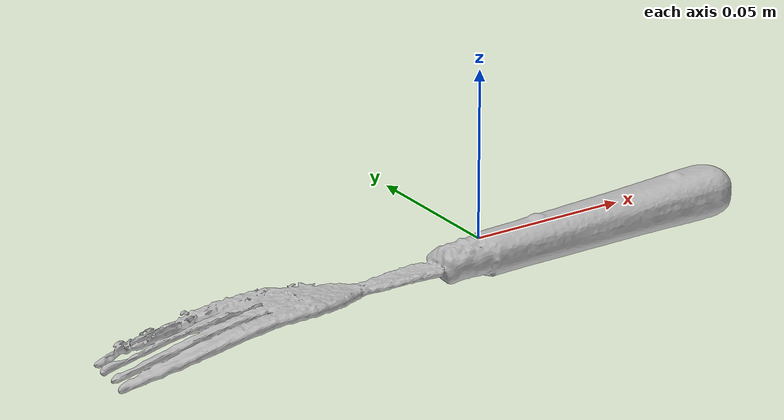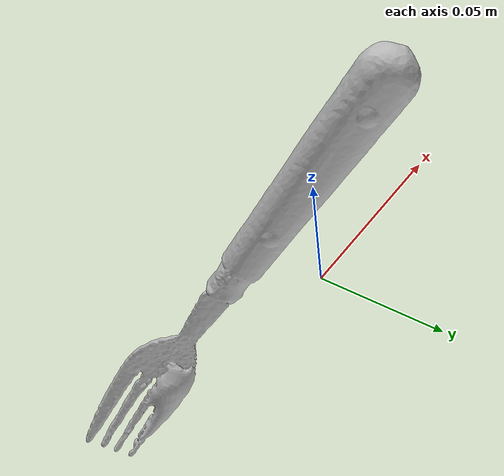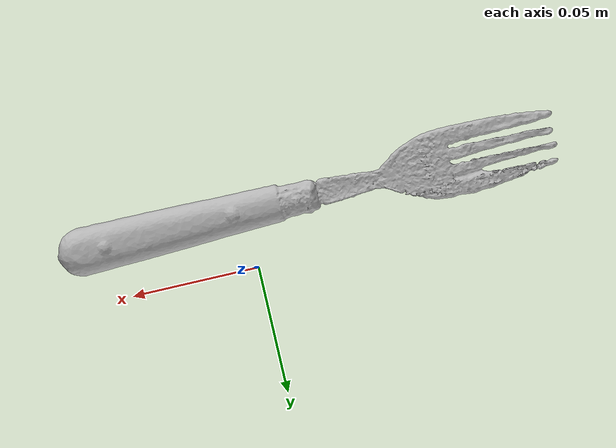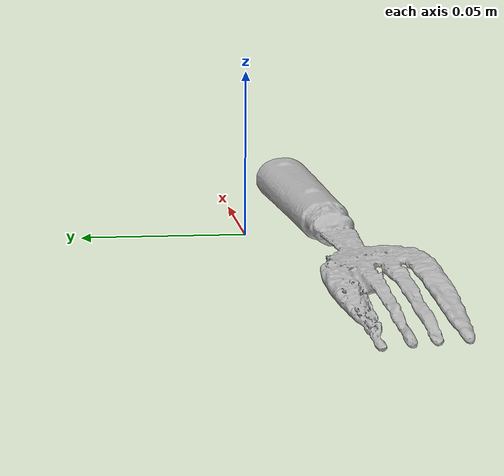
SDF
<?xml version='1.0'?>
<sdf version="1.4">
  <model name="fork">
    <static>false</static>
    <link name="link">
      <inertial>
        <pose>0.008499561933269988 -0.021533112701872234 0.00670927433639299 1.6796656782872945 1.445525497397485 -1.463809690115677</pose>
        <mass>1.9601593273736498e-05</mass>
        <inertia>
          <ixx>4.722043931283828e-08</ixx>
          <ixy>-6.161489561122109e-24</ixy>
          <ixz>-8.353904654905929e-26</ixz>
          <iyy>4.6924457020538644e-08</iyy>
          <iyz>1.6369737175229306e-25</iyz>
          <izz>6.556117942788126e-10</izz>
        </inertia>
      </inertial>
      <collision name="collision">
        <geometry>
          <mesh>
            <!-- Use a downsampled mesh for collisions -->
            <uri>model://030_fork/google_16k/030_fork.obj</uri>
            </mesh>
        </geometry>
        <surface>
          <friction>
            <ode>
              <mu>0.9</mu>
              <mu2>0.9</mu2>
            </ode>
          </friction>
          <contact>
            <ode>
              <kp>1000000000000.0</kp>
              <kd>1</kd>
              <min_depth>0.0001</min_depth>
              <max_vel>0.01</max_vel>
            </ode>
          </contact>
          <bounce>
            <restitution_coefficient>0.1</restitution_coefficient>
            <threshold>1000.0</threshold>
          </bounce>
        </surface>
      </collision>
      <visual name="visual">
        <geometry>
          <mesh>
            <uri>model://030_fork/google_16k/030_fork.dae</uri>
            </mesh>
        </geometry>
      </visual>
    </link>
  </model>
</sdf>
